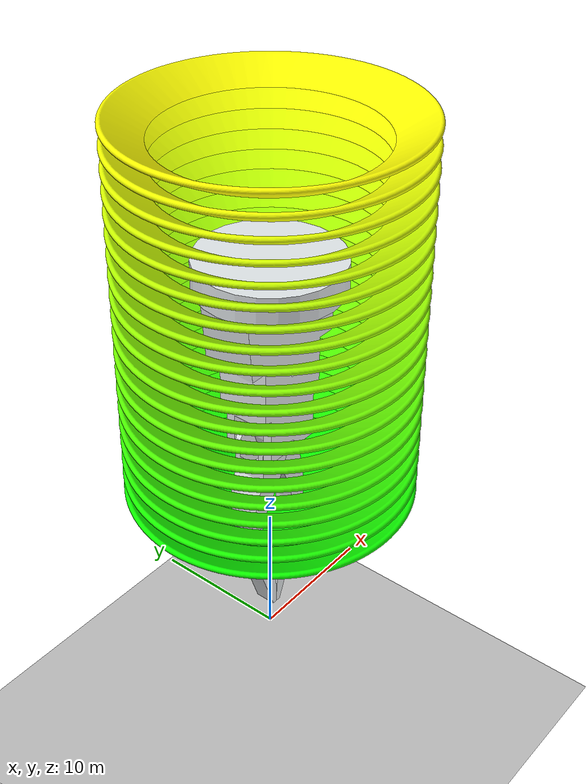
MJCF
<!--# Created by Xinchao Song on May 21, 2020.-->

<mujoco model="topplate-stacked">
    <compiler angle="radian"/>
    <option gravity='0 0 -9.81'/>

    <asset>
        <include file="gripah_asset.xml"/>
        <mesh name="mesh:base_plate" file="objects/plate_whole.STL"/>
        <mesh name="mesh:plate" file="objects/plate_half.STL"/>
        <texture name="tex:floor" type="2d" builtin="checker" rgb1="1 1 1" rgb2="0 0 0" width="100" height="100"
                 mark="cross"/>
        <material name="mat:floor" reflectance="0.1" texture="tex:floor" texrepeat="25 25"/>
    </asset>

    <contact>
        <include file="gripah_contact.xml"/>
    </contact>

    <default>
        <joint armature="1" damping="1"/>
        <geom contype="1" condim="3" friction="1 0.1 0.1"/>

        <default class="base_plate">
            <geom type="mesh" mesh="mesh:base_plate" quat="1 1 0 0" mass="1"/>
        </default>
        <default class="plate">
            <geom type="mesh" mesh="mesh:plate" quat="1 1 0 0" mass="1"/>
        </default>
    </default>

    <worldbody>
        <light name="light" directional="true" diffuse="0.8 0.8 0.8" specular="0.4 0.4 0.4" pos="0 -100 200"
               dir="1 0 -1"/>
        <geom name="floor" type="plane" material="mat:floor" size="250 250 250" pos="0 0 -10" rgba="0.752 0.752 0.752 1"
              quat="1 0 0 0"/>

        <include file="gripah_body.xml"/>

        <body name="plate1" pos="0 0 10.0">
            <geom name="geom:plate1" rgba="0.05 1 0 1" class="base_plate"/>
        </body>
        <body name="plate2" pos="0 0 11.4">
            <geom name="geom:plate2" rgba="0.1 1 0 1" class="plate"/>
        </body>
        <body name="plate3" pos="0 0 12.8">
            <geom name="geom:plate3" rgba="0.15 1 0 1" class="plate"/>
        </body>
        <body name="plate4" pos="0 0 14.2">
            <geom name="geom:plate4" rgba="0.2 1 0 1" class="plate"/>
        </body>
        <body name="plate5" pos="0 0 15.6">
            <geom name="geom:plate5" rgba="0.25 1 0 1" class="plate"/>
        </body>
        <body name="plate6" pos="0 0 17.0">
            <geom name="geom:plate6" rgba="0.3 1 0 1" class="plate"/>
        </body>
        <body name="plate7" pos="0 0 18.4">
            <geom name="geom:plate7" rgba="0.35 1 0 1" class="plate"/>
        </body>
        <body name="plate8" pos="0 0 19.8">
            <geom name="geom:plate8" rgba="0.4 1 0 1" class="plate"/>
        </body>
        <body name="plate9" pos="0 0 21.2">
            <geom name="geom:plate9" rgba="0.45 1 0 1" class="plate"/>
        </body>
        <body name="plate10" pos="0 0 22.6">
            <geom name="geom:plate10" rgba="0.5 1 0 1" class="plate"/>
        </body>
        <body name="plate11" pos="0 0 24.0">
            <geom name="geom:plate11" rgba="0.55 1 0 1" class="plate"/>
        </body>
        <body name="plate12" pos="0 0 25.4">
            <geom name="geom:plate12" rgba="0.6 1 0 1" class="plate"/>
        </body>
        <body name="plate13" pos="0 0 26.8">
            <geom name="geom:plate13" rgba="0.65 1 0 1" class="plate"/>
        </body>
        <body name="plate14" pos="0 0 28.2">
            <geom name="geom:plate14" rgba="0.7 1 0 1" class="plate"/>
        </body>
        <body name="plate15" pos="0 0 29.6">
            <geom name="geom:plate15" rgba="0.75 1 0 1" class="plate"/>
        </body>
        <body name="plate16" pos="0 0 31.0">
            <geom name="geom:plate16" rgba="0.8 1 0 1" class="plate"/>
        </body>
        <body name="plate17" pos="0 0 32.4">
            <geom name="geom:plate17" rgba="0.85 1 0 1" class="plate"/>
        </body>
        <body name="plate18" pos="0 0 33.8">
            <geom name="geom:plate18" rgba="0.9 1 0 1" class="plate"/>
        </body>
        <body name="plate19" pos="0 0 35.2">
            <geom name="geom:plate19" rgba="0.95 1 0 1" class="plate"/>
        </body>
        <body name="plate20" pos="0 0 36.6">
            <geom name="geom:plate20" rgba="1 1 0 1" class="plate"/>
        </body>
    </worldbody>

    <actuator>
        <velocity name="velocity:z" joint="slide:gripah-base-z" gear="1" kv="100"/>
        <velocity name="velocity:narrow-finger" joint="hinge:narrow-finger" gear="1" kv="100"/>
        <position name="position:narrow-finger" joint="hinge:narrow-finger" gear="1" kp="100"/>
    </actuator>

    <sensor>
        <framepos name="framepos:gripah-center" objtype="site" objname="site:gripah-center"/>
        <framepos name="framepos:wide-finger-tip" objtype="site" objname="site:wide-finger-tip"/>
    </sensor>
</mujoco>

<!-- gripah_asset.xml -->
<!--# Created by Xinchao Song on May 21, 2020.-->

<mujoco>
    <mesh name="mesh:wrist" file="gripah/wrist_rescaled.STL"/>
    <mesh name="mesh:wide-finger" file="gripah/wide_finger_rescaled.STL"/>
    <mesh name="mesh:wide-finger-tip" file="gripah/wide_finger_tip.STL"/>
    <mesh name="mesh:narrow-finger" file="gripah/narrow_finger_rescaled.STL"/>
    <mesh name="mesh:narrow-finger-tip" file="gripah/narrow_finger_tip.STL"/>
</mujoco>

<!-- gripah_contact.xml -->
<!--# Created by Xinchao Song on May 21, 2020.-->

<mujoco>
    <exclude body1="narrow-finger" body2="wide-finger"/>
    <exclude body1="wrist" body2="narrow-finger"/>
    <exclude body1="wrist" body2="wide-finger"/>
</mujoco>

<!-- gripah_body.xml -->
<!--# Created by Xinchao Song on May 21, 2020.-->

<mujoco>
    <body name="gripah-base" pos="0 0 30" quat="0 0.707 0 -0.707">
        <geom name="geom:gripah-base" type="cylinder" size="5 1" quat="1 0 1 0" mass="0.01"
              rgba="0.89804 0.91765 0.92941 1"/>
        <joint type="slide" name="slide:gripah-base-x" axis="0 0 -1" limited="true" range="0 100"/>

        <body name="wrist" pos="6.95 0 0" quat="1 0 0 0">
            <inertial pos="-2.0421 0 0" mass="0.18" diaginertia="1 1 1"/>
            <geom name="geom:wrist" type="mesh" mesh="mesh:wrist" rgba="0.89804 0.91765 0.92941 1"/>

            <body name="wide-finger" pos="5.5 0 0" quat="1 1 0 0">
                <inertial pos="5.6976 1.5337 -2.3122e-07" quat="0.653281 0.653281 -0.270598 -0.270598" mass="0.0000167"
                          diaginertia="1.01 1 0.99"/>
                <geom name="geom:wide-finger" type="mesh" rgba="0.89804 0.91765 0.92941 1" mesh="mesh:wide-finger"
                      contype="0" conaffinity="0"/>
                <geom name="geom:wide-finger-tip" type="mesh" rgba="0.89804 0.91765 0.92941 1"
                      mesh="mesh:wide-finger-tip"/>
                <joint name="hinge:wide-finger" pos="0 0 0" axis="0 0 1" limited="true" range="-1.0472 1.0472"
                       damping="50" stiffness="1" springref="0" ref="0"/>
                <site name="wide-finger-tip" size="0.1" pos="15 0.375 0" rgba="0 0 0 1" type="sphere"/>
            </body>

            <body name="narrow-finger" pos="5.5 0 0" quat="1 1 0 0">
                <inertial pos="5.2556 1.3896 2.3305e-05" quat="0.653281 0.653281 -0.270598 -0.270598"
                          mass="0.0000166" diaginertia="1.03 1 0.97"/>
                <geom name="geom:narrow-finger" type="mesh" rgba="0.89804 0.91765 0.92941 1" mesh="mesh:narrow-finger"
                      contype="0" conaffinity="0"/>
                <geom name="geom:narrow-finger-tip" type="mesh" rgba="0.89804 0.91765 0.92941 1"
                      mesh="mesh:narrow-finger-tip"/>
                <joint name="hinge:narrow-finger" pos="0 0 0" axis="0 0 1" limited="true" range="-1.0472 1.0472"
                       damping="50" stiffness="1" springref="0" ref="0"/>
            </body>

            <site name="gripah-center" size="0.1" pos="0 0 0" rgba="0 0 0 1" type="sphere"/>
        </body>
    </body>
</mujoco>
